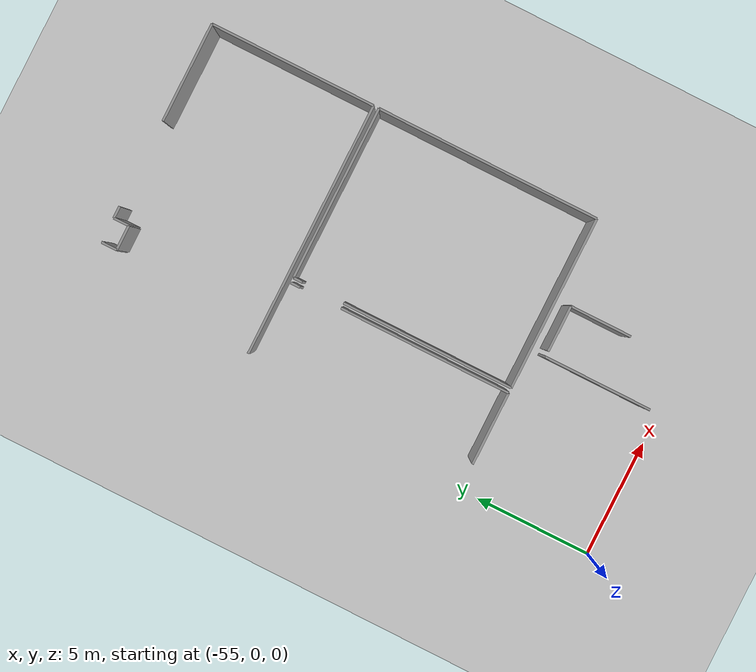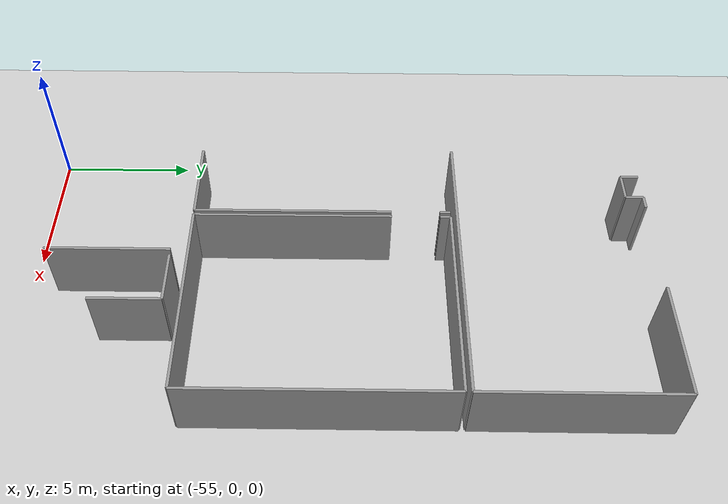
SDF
<sdf version="1.6">
 <world name="default">
  <model name="ground_plane">
   <static>1</static>
   <link name="link">
    <collision name="collision">
     <geometry><plane><normal>0 0 1</normal><size>100 100</size></plane></geometry>
     <surface><friction><ode><mu>100</mu><mu2>50</mu2></ode></friction></surface>
    </collision>
    <visual name="visual">
     <cast_shadows>0</cast_shadows>
     <geometry><plane><normal>0 0 1</normal><size>100 100</size></plane></geometry>
     <material>
      <script><uri>file://media/materials/scripts/gazebo.material</uri><name>Gazebo/Grey</name></script>
     </material>
    </visual>
   </link>
  </model>
  <model name="50010540">
   <static>1</static>
   <link name="Wall_2">
    <collision name="Wall_2_Collision">
     <geometry><box><size>0.657527630015 0.1 2.5</size></box></geometry>
     <pose>0.328763815008 0 1.25 0 0 0</pose>
    </collision>
    <visual name="Wall_2_Visual">
     <pose>0.328763815008 0 1.25 0 0 0</pose>
     <geometry><box><size>0.657527630015 0.1 2.5</size></box></geometry>
     <material>
      <script><uri>file://media/materials/scripts/gazebo.material</uri><name>Gazebo/Grey</name></script>
      <ambient>1 1 1 1</ambient>
     </material>
    </visual>
    <pose>10.0247224288 -0.0 0 0 0 -1.57079632679</pose>
   </link>
   <link name="Wall_3">
    <collision name="Wall_3_Collision">
     <geometry><box><size>1.05079855352 0.1 2.5</size></box></geometry>
     <pose>0.525399276758 0 1.25 0 0 0</pose>
    </collision>
    <visual name="Wall_3_Visual">
     <pose>0.525399276758 0 1.25 0 0 0</pose>
     <geometry><box><size>1.05079855352 0.1 2.5</size></box></geometry>
     <material>
      <script><uri>file://media/materials/scripts/gazebo.material</uri><name>Gazebo/Grey</name></script>
      <ambient>1 1 1 1</ambient>
     </material>
    </visual>
    <pose>10.0247224288 -0.657527630015 0 0 0 0.0</pose>
   </link>
   <link name="Wall_4">
    <collision name="Wall_4_Collision">
     <geometry><box><size>0.655621015971 0.1 2.5</size></box></geometry>
     <pose>0.327810507986 0 1.25 0 0 0</pose>
    </collision>
    <visual name="Wall_4_Visual">
     <pose>0.327810507986 0 1.25 0 0 0</pose>
     <geometry><box><size>0.655621015971 0.1 2.5</size></box></geometry>
     <material>
      <script><uri>file://media/materials/scripts/gazebo.material</uri><name>Gazebo/Grey</name></script>
      <ambient>1 1 1 1</ambient>
     </material>
    </visual>
    <pose>11.0755209823 -0.657527630015 0 0 0 1.57079632679</pose>
   </link>
   <link name="Wall_5">
    <collision name="Wall_5_Collision">
     <geometry><box><size>0.505379829294 0.1 2.5</size></box></geometry>
     <pose>0.252689914647 0 1.25 0 0 0</pose>
    </collision>
    <visual name="Wall_5_Visual">
     <pose>0.252689914647 0 1.25 0 0 0</pose>
     <geometry><box><size>0.505379829294 0.1 2.5</size></box></geometry>
     <material>
      <script><uri>file://media/materials/scripts/gazebo.material</uri><name>Gazebo/Grey</name></script>
      <ambient>1 1 1 1</ambient>
     </material>
    </visual>
    <pose>11.0755209823 -0.00190661404412 0 0 0 0.0</pose>
   </link>
   <link name="Wall_6">
    <collision name="Wall_6_Collision">
     <geometry><box><size>4.22378564574 0.1 2.5</size></box></geometry>
     <pose>2.11189282287 0 1.25 0 0 0</pose>
    </collision>
    <visual name="Wall_6_Visual">
     <pose>2.11189282287 0 1.25 0 0 0</pose>
     <geometry><box><size>4.22378564574 0.1 2.5</size></box></geometry>
     <material>
      <script><uri>file://media/materials/scripts/gazebo.material</uri><name>Gazebo/Grey</name></script>
      <ambient>1 1 1 1</ambient>
     </material>
    </visual>
    <pose>15.2966373684 -0.00190661404412 0 0 0 0.0</pose>
   </link>
   <link name="Wall_7">
    <collision name="Wall_7_Collision">
     <geometry><box><size>7.03070284149 0.1 2.5</size></box></geometry>
     <pose>3.51535142075 0 1.25 0 0 0</pose>
    </collision>
    <visual name="Wall_7_Visual">
     <pose>3.51535142075 0 1.25 0 0 0</pose>
     <geometry><box><size>7.03070284149 0.1 2.5</size></box></geometry>
     <material>
      <script><uri>file://media/materials/scripts/gazebo.material</uri><name>Gazebo/Grey</name></script>
      <ambient>1 1 1 1</ambient>
     </material>
    </visual>
    <pose>19.5204230141 -0.00190661404412 0 0 0 -1.57079632679</pose>
   </link>
   <link name="Wall_8">
    <collision name="Wall_8_Collision">
     <geometry><box><size>10.7779620838 0.1 2.5</size></box></geometry>
     <pose>5.3889810419 0 1.25 0 0 0</pose>
    </collision>
    <visual name="Wall_8_Visual">
     <pose>5.3889810419 0 1.25 0 0 0</pose>
     <geometry><box><size>10.7779620838 0.1 2.5</size></box></geometry>
     <material>
      <script><uri>file://media/materials/scripts/gazebo.material</uri><name>Gazebo/Grey</name></script>
      <ambient>1 1 1 1</ambient>
     </material>
    </visual>
    <pose>19.5204230141 -7.03260945553 0 0 0 3.14159265359</pose>
   </link>
   <link name="Wall_16">
    <collision name="Wall_16_Collision">
     <geometry><box><size>0.393906461515 0.1 2.5</size></box></geometry>
     <pose>0.196953230757 0 1.25 0 0 0</pose>
    </collision>
    <visual name="Wall_16_Visual">
     <pose>0.196953230757 0 1.25 0 0 0</pose>
     <geometry><box><size>0.393906461515 0.1 2.5</size></box></geometry>
     <material>
      <script><uri>file://media/materials/scripts/gazebo.material</uri><name>Gazebo/Grey</name></script>
      <ambient>1 1 1 1</ambient>
     </material>
    </visual>
    <pose>11.9369292074 -7.26775852098 0 0 0 -1.57079632679</pose>
   </link>
   <link name="Wall_17">
    <collision name="Wall_17_Collision">
     <geometry><box><size>7.28936681348 0.1 2.5</size></box></geometry>
     <pose>3.64468340674 0 1.25 0 0 0</pose>
    </collision>
    <visual name="Wall_17_Visual">
     <pose>3.64468340674 0 1.25 0 0 0</pose>
     <geometry><box><size>7.28936681348 0.1 2.5</size></box></geometry>
     <material>
      <script><uri>file://media/materials/scripts/gazebo.material</uri><name>Gazebo/Grey</name></script>
      <ambient>1 1 1 1</ambient>
     </material>
    </visual>
    <pose>11.9369292074 -9.44867077224 0 0 0 -1.57079632679</pose>
   </link>
   <link name="Wall_18">
    <collision name="Wall_18_Collision">
     <geometry><box><size>3.09290930237 0.1 2.5</size></box></geometry>
     <pose>1.54645465118 0 1.25 0 0 0</pose>
    </collision>
    <visual name="Wall_18_Visual">
     <pose>1.54645465118 0 1.25 0 0 0</pose>
     <geometry><box><size>3.09290930237 0.1 2.5</size></box></geometry>
     <material>
      <script><uri>file://media/materials/scripts/gazebo.material</uri><name>Gazebo/Grey</name></script>
      <ambient>1 1 1 1</ambient>
     </material>
    </visual>
    <pose>11.9369292074 -16.7380375857 0 0 0 3.14159265359</pose>
   </link>
   <link name="Wall_24">
    <collision name="Wall_24_Collision">
     <geometry><box><size>7.29864566849 0.1 2.5</size></box></geometry>
     <pose>3.64932283425 0 1.25 0 0 0</pose>
    </collision>
    <visual name="Wall_24_Visual">
     <pose>3.64932283425 0 1.25 0 0 0</pose>
     <geometry><box><size>7.29864566849 0.1 2.5</size></box></geometry>
     <material>
      <script><uri>file://media/materials/scripts/gazebo.material</uri><name>Gazebo/Grey</name></script>
      <ambient>1 1 1 1</ambient>
     </material>
    </visual>
    <pose>12.1536476704 -16.7415965986 0 0 0 1.57079632679</pose>
   </link>
   <link name="Wall_25">
    <collision name="Wall_25_Collision">
     <geometry><box><size>0.386534220544 0.1 2.5</size></box></geometry>
     <pose>0.193267110272 0 1.25 0 0 0</pose>
    </collision>
    <visual name="Wall_25_Visual">
     <pose>0.193267110272 0 1.25 0 0 0</pose>
     <geometry><box><size>0.386534220544 0.1 2.5</size></box></geometry>
     <material>
      <script><uri>file://media/materials/scripts/gazebo.material</uri><name>Gazebo/Grey</name></script>
      <ambient>1 1 1 1</ambient>
     </material>
    </visual>
    <pose>12.1536476704 -7.65365720351 0 0 0 1.57079632679</pose>
   </link>
   <link name="Wall_26">
    <collision name="Wall_26_Collision">
     <geometry><box><size>7.3639789764 0.1 2.5</size></box></geometry>
     <pose>3.6819894882 0 1.25 0 0 0</pose>
    </collision>
    <visual name="Wall_26_Visual">
     <pose>3.6819894882 0 1.25 0 0 0</pose>
     <geometry><box><size>7.3639789764 0.1 2.5</size></box></geometry>
     <material>
      <script><uri>file://media/materials/scripts/gazebo.material</uri><name>Gazebo/Grey</name></script>
      <ambient>1 1 1 1</ambient>
     </material>
    </visual>
    <pose>12.1536476704 -7.26712298296 0 0 0 0.0</pose>
   </link>
   <link name="Wall_27">
    <collision name="Wall_27_Collision">
     <geometry><box><size>9.47917659695 0.1 2.5</size></box></geometry>
     <pose>4.73958829847 0 1.25 0 0 0</pose>
    </collision>
    <visual name="Wall_27_Visual">
     <pose>4.73958829847 0 1.25 0 0 0</pose>
     <geometry><box><size>9.47917659695 0.1 2.5</size></box></geometry>
     <material>
      <script><uri>file://media/materials/scripts/gazebo.material</uri><name>Gazebo/Grey</name></script>
      <ambient>1 1 1 1</ambient>
     </material>
    </visual>
    <pose>19.5176266468 -7.26712298296 0 0 0 -1.57079632679</pose>
   </link>
   <link name="Wall_28">
    <collision name="Wall_28_Collision">
     <geometry><box><size>7.36398047817 0.1 2.5</size></box></geometry>
     <pose>3.68199023909 0 1.25 0 0 0</pose>
    </collision>
    <visual name="Wall_28_Visual">
     <pose>3.68199023909 0 1.25 0 0 0</pose>
     <geometry><box><size>7.36398047817 0.1 2.5</size></box></geometry>
     <material>
      <script><uri>file://media/materials/scripts/gazebo.material</uri><name>Gazebo/Grey</name></script>
      <ambient>1 1 1 1</ambient>
     </material>
    </visual>
    <pose>19.5176266468 -16.7462995799 0 0 0 3.14095400692</pose>
   </link>
   <link name="Wall_43">
    <collision name="Wall_43_Collision">
     <geometry><box><size>4.5593497175 0.1 2.5</size></box></geometry>
     <pose>2.27967485875 0 1.25 0 0 0</pose>
    </collision>
    <visual name="Wall_43_Visual">
     <pose>2.27967485875 0 1.25 0 0 0</pose>
     <geometry><box><size>4.5593497175 0.1 2.5</size></box></geometry>
     <material>
      <script><uri>file://media/materials/scripts/gazebo.material</uri><name>Gazebo/Grey</name></script>
      <ambient>1 1 1 1</ambient>
     </material>
    </visual>
    <pose>13.8275276936 -17.3780243665 0 0 0 -1.57079632679</pose>
   </link>
   <link name="Wall_56">
    <collision name="Wall_56_Collision">
     <geometry><box><size>1.95148302796 0.1 2.5</size></box></geometry>
     <pose>0.975741513979 0 1.25 0 0 0</pose>
    </collision>
    <visual name="Wall_56_Visual">
     <pose>0.975741513979 0 1.25 0 0 0</pose>
     <geometry><box><size>1.95148302796 0.1 2.5</size></box></geometry>
     <material>
      <script><uri>file://media/materials/scripts/gazebo.material</uri><name>Gazebo/Grey</name></script>
      <ambient>1 1 1 1</ambient>
     </material>
    </visual>
    <pose>14.0753875193 -17.3813291642 0 0 0 0.0</pose>
   </link>
   <link name="Wall_57">
    <collision name="Wall_57_Collision">
     <geometry><box><size>2.60850222756 0.1 2.5</size></box></geometry>
     <pose>1.30425111378 0 1.25 0 0 0</pose>
    </collision>
    <visual name="Wall_57_Visual">
     <pose>1.30425111378 0 1.25 0 0 0</pose>
     <geometry><box><size>2.60850222756 0.1 2.5</size></box></geometry>
     <material>
      <script><uri>file://media/materials/scripts/gazebo.material</uri><name>Gazebo/Grey</name></script>
      <ambient>1 1 1 1</ambient>
     </material>
    </visual>
    <pose>16.0268705473 -17.3813291642 0 0 0 -1.57079632679</pose>
   </link>
   <pose>-62.5 22.811372635 0 0 0 0</pose>
  </model>
 </world>
</sdf>
